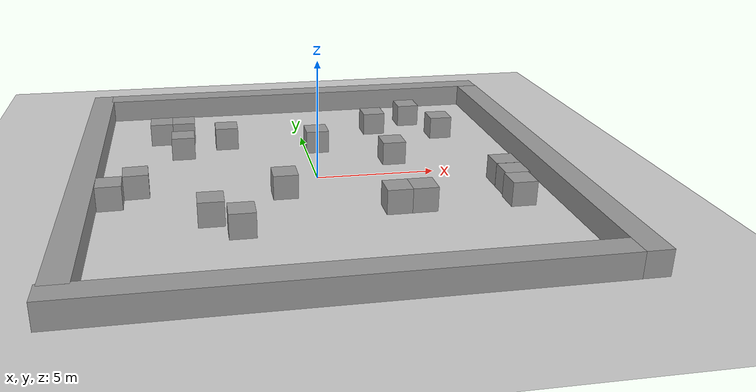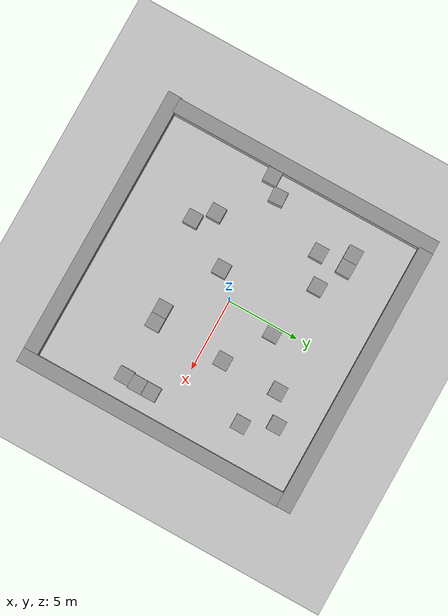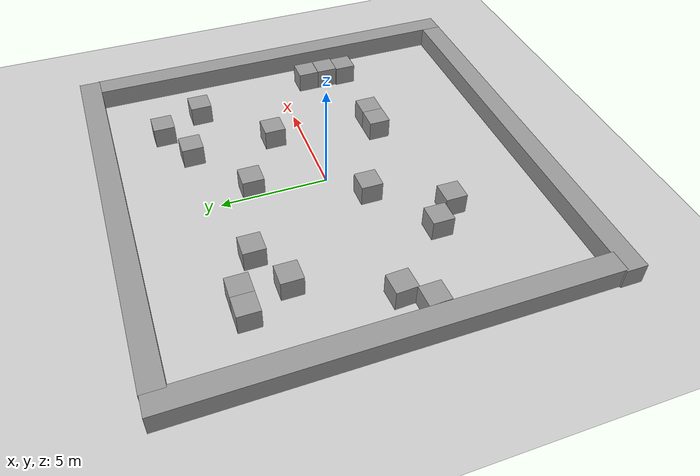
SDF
<sdf version="1.7">
 <world name="default">
  <light name="sun" type="directional">
   <pose>0 0 10 0 -0 0</pose>
   <diffuse>0.8 0.8 0.8 1</diffuse>
   <specular>0.2 0.2 0.2 1</specular>
   <attenuation>
    <range>1000</range>
    <constant>0.9</constant>
    <linear>0.01</linear>
    <quadratic>0.001</quadratic>
   </attenuation>
   <direction>-0.5 0.1 -0.9</direction>
   <spot><inner_angle>0</inner_angle><outer_angle>0</outer_angle><falloff>0</falloff></spot>
  </light>
  <model name="ground_plane">
   <static>1</static>
   <link name="link">
    <collision name="collision">
     <geometry><plane><normal>0 0 1</normal><size>100 100</size></plane></geometry>
     <surface>
      <contact><collide_bitmask>65535</collide_bitmask></contact>
      <friction><ode><mu>100</mu><mu2>50</mu2></ode></friction>
     </surface>
    </collision>
    <visual name="visual">
     <cast_shadows>0</cast_shadows>
     <geometry><plane><normal>0 0 1</normal><size>100 100</size></plane></geometry>
     <material>
      <script><uri>file://media/materials/scripts/gazebo.material</uri><name>Gazebo/Grey</name></script>
     </material>
    </visual>
   </link>
  </model>
  <gravity>0 0 -9.8</gravity>
  <magnetic_field>6e-06 2.3e-05 -4.2e-05</magnetic_field>
  <atmosphere type="adiabatic"/>
  <physics type="ode">
   <max_step_size>0.001</max_step_size>
   <real_time_factor>1</real_time_factor>
   <real_time_update_rate>1000</real_time_update_rate>
  </physics>
  <scene><ambient>0.4 0.4 0.4 1</ambient><background>0.7 0.7 0.7 1</background><shadows>1</shadows></scene>
  <spherical_coordinates>
   <surface_model>EARTH_WGS84</surface_model>
   <latitude_deg>0</latitude_deg>
   <longitude_deg>0</longitude_deg>
   <elevation>0</elevation>
   <heading_deg>0</heading_deg>
  </spherical_coordinates>
  <model name="arena">
   <link name="link">
    <inertial>
     <mass>18.9168</mass>
     <inertia><ixx>3.15279</ixx><ixy>0</ixy><ixz>0</ixz><iyy>565.677</iyy><iyz>0</iyz><izz>565.677</izz></inertia>
    </inertial>
    <pose>0.069183 -7.9899 7.8e-05 0 -0 0</pose>
    <visual name="visual">
     <geometry><box><size>18.9167 1 1</size></box></geometry>
     <material>
      <script><name>Gazebo/Grey</name><uri>file://media/materials/scripts/gazebo.material</uri></script>
      <shader type="pixel"/>
     </material>
    </visual>
    <collision name="collision">
     <geometry><box><size>18.9167 1 1</size></box></geometry>
     <surface>
      <friction>
       <ode><mu>1</mu><mu2>1</mu2><fdir1>0 0 0</fdir1><slip1>0</slip1><slip2>0</slip2></ode>
       <torsional>
        <coefficient>1</coefficient>
        <patch_radius>0</patch_radius>
        <surface_radius>0</surface_radius>
        <use_patch_radius>1</use_patch_radius>
        <ode><slip>0</slip></ode>
       </torsional>
      </friction>
      <bounce><restitution_coefficient>0</restitution_coefficient><threshold>1e+06</threshold></bounce>
      <contact>
       <collide_without_contact>0</collide_without_contact>
       <collide_without_contact_bitmask>1</collide_without_contact_bitmask>
       <collide_bitmask>1</collide_bitmask>
       <ode>
        <soft_cfm>0</soft_cfm>
        <soft_erp>0.2</soft_erp>
        <kp>1e+13</kp>
        <kd>1</kd>
        <max_vel>0.01</max_vel>
        <min_depth>0</min_depth>
       </ode>
       <bullet>
        <split_impulse>1</split_impulse>
        <split_impulse_penetration_threshold>-0.01</split_impulse_penetration_threshold>
        <soft_cfm>0</soft_cfm>
        <soft_erp>0.2</soft_erp>
        <kp>1e+13</kp>
        <kd>1</kd>
       </bullet>
      </contact>
     </surface>
    </collision>
   </link>
   <link name="link_0">
    <inertial>
     <mass>19.0551</mass>
     <inertia><ixx>578.161</ixx><ixy>0</ixy><ixz>0</ixz><iyy>3.17585</iyy><iyz>0</iyz><izz>578.161</izz></inertia>
    </inertial>
    <pose>10.0251 1.04525 -5e-06 -1e-05 0 0</pose>
    <visual name="visual">
     <geometry><box><size>1 19.0551 1</size></box></geometry>
     <material>
      <lighting>1</lighting>
      <script><uri>file://media/materials/scripts/gazebo.material</uri><name>Gazebo/Grey</name></script>
      <shader type="pixel"/>
     </material>
    </visual>
    <collision name="collision">
     <geometry><box><size>1 19.0551 1</size></box></geometry>
     <surface>
      <friction>
       <ode><mu>1</mu><mu2>1</mu2><fdir1>0 0 0</fdir1><slip1>0</slip1><slip2>0</slip2></ode>
       <torsional>
        <coefficient>1</coefficient>
        <patch_radius>0</patch_radius>
        <surface_radius>0</surface_radius>
        <use_patch_radius>1</use_patch_radius>
        <ode><slip>0</slip></ode>
       </torsional>
      </friction>
      <bounce><restitution_coefficient>0</restitution_coefficient><threshold>1e+06</threshold></bounce>
      <contact>
       <collide_without_contact>0</collide_without_contact>
       <collide_without_contact_bitmask>1</collide_without_contact_bitmask>
       <collide_bitmask>1</collide_bitmask>
       <ode>
        <soft_cfm>0</soft_cfm>
        <soft_erp>0.2</soft_erp>
        <kp>1e+13</kp>
        <kd>1</kd>
        <max_vel>0.01</max_vel>
        <min_depth>0</min_depth>
       </ode>
       <bullet>
        <split_impulse>1</split_impulse>
        <split_impulse_penetration_threshold>-0.01</split_impulse_penetration_threshold>
        <soft_cfm>0</soft_cfm>
        <soft_erp>0.2</soft_erp>
        <kp>1e+13</kp>
        <kd>1</kd>
       </bullet>
      </contact>
     </surface>
    </collision>
   </link>
   <link name="link_0_clone">
    <inertial>
     <mass>19.0551</mass>
     <inertia><ixx>578.161</ixx><ixy>0</ixy><ixz>0</ixz><iyy>3.17585</iyy><iyz>0</iyz><izz>578.161</izz></inertia>
    </inertial>
    <pose>-8.8177 1.91923 -2.4e-05 -2e-05 0 0</pose>
    <visual name="visual">
     <geometry><box><size>1 19.0551 1</size></box></geometry>
     <material>
      <lighting>1</lighting>
      <script><uri>file://media/materials/scripts/gazebo.material</uri><name>Gazebo/Grey</name></script>
      <shader type="pixel"/>
     </material>
    </visual>
    <collision name="collision">
     <geometry><box><size>1 19.0551 1</size></box></geometry>
     <surface>
      <friction>
       <ode><mu>1</mu><mu2>1</mu2><fdir1>0 0 0</fdir1><slip1>0</slip1><slip2>0</slip2></ode>
       <torsional>
        <coefficient>1</coefficient>
        <patch_radius>0</patch_radius>
        <surface_radius>0</surface_radius>
        <use_patch_radius>1</use_patch_radius>
        <ode><slip>0</slip></ode>
       </torsional>
      </friction>
      <bounce><restitution_coefficient>0</restitution_coefficient><threshold>1e+06</threshold></bounce>
      <contact>
       <collide_without_contact>0</collide_without_contact>
       <collide_without_contact_bitmask>1</collide_without_contact_bitmask>
       <collide_bitmask>1</collide_bitmask>
       <ode>
        <soft_cfm>0</soft_cfm>
        <soft_erp>0.2</soft_erp>
        <kp>1e+13</kp>
        <kd>1</kd>
        <max_vel>0.01</max_vel>
        <min_depth>0</min_depth>
       </ode>
       <bullet>
        <split_impulse>1</split_impulse>
        <split_impulse_penetration_threshold>-0.01</split_impulse_penetration_threshold>
        <soft_cfm>0</soft_cfm>
        <soft_erp>0.2</soft_erp>
        <kp>1e+13</kp>
        <kd>1</kd>
       </bullet>
      </contact>
     </surface>
    </collision>
   </link>
   <link name="link_clone">
    <inertial>
     <mass>18.9168</mass>
     <inertia><ixx>3.15279</ixx><ixy>0</ixy><ixz>0</ixz><iyy>565.677</iyy><iyz>0</iyz><izz>565.677</izz></inertia>
    </inertial>
    <pose>1.04069 10.9736 -2.9e-05 -1e-05 0 0</pose>
    <visual name="visual">
     <geometry><box><size>18.9167 1 1</size></box></geometry>
     <material>
      <script><name>Gazebo/Grey</name><uri>file://media/materials/scripts/gazebo.material</uri></script>
      <shader type="pixel"/>
     </material>
    </visual>
    <collision name="collision">
     <geometry><box><size>18.9167 1 1</size></box></geometry>
     <surface>
      <friction>
       <ode><mu>1</mu><mu2>1</mu2><fdir1>0 0 0</fdir1><slip1>0</slip1><slip2>0</slip2></ode>
       <torsional>
        <coefficient>1</coefficient>
        <patch_radius>0</patch_radius>
        <surface_radius>0</surface_radius>
        <use_patch_radius>1</use_patch_radius>
        <ode><slip>0</slip></ode>
       </torsional>
      </friction>
      <bounce><restitution_coefficient>0</restitution_coefficient><threshold>1e+06</threshold></bounce>
      <contact>
       <collide_without_contact>0</collide_without_contact>
       <collide_without_contact_bitmask>1</collide_without_contact_bitmask>
       <collide_bitmask>1</collide_bitmask>
       <ode>
        <soft_cfm>0</soft_cfm>
        <soft_erp>0.2</soft_erp>
        <kp>1e+13</kp>
        <kd>1</kd>
        <max_vel>0.01</max_vel>
        <min_depth>0</min_depth>
       </ode>
       <bullet>
        <split_impulse>1</split_impulse>
        <split_impulse_penetration_threshold>-0.01</split_impulse_penetration_threshold>
        <soft_cfm>0</soft_cfm>
        <soft_erp>0.2</soft_erp>
        <kp>1e+13</kp>
        <kd>1</kd>
       </bullet>
      </contact>
     </surface>
    </collision>
   </link>
   <static>0</static>
   <pose>-0.529199 -1.512 0.499922 0 -0 0</pose>
  </model>
  <model name="unit_box">
   <pose>5.481 6.50159 0.499995 0 1e-05 0</pose>
   <link name="link">
    <inertial>
     <mass>1</mass>
     <inertia>
      <ixx>0.166667</ixx>
      <ixy>0</ixy>
      <ixz>0</ixz>
      <iyy>0.166667</iyy>
      <iyz>0</iyz>
      <izz>0.166667</izz>
     </inertia>
    </inertial>
    <collision name="collision"><geometry><box><size>1 1 1</size></box></geometry></collision>
    <visual name="visual">
     <geometry><box><size>1 1 1</size></box></geometry>
     <material>
      <script><name>Gazebo/Grey</name><uri>file://media/materials/scripts/gazebo.material</uri></script>
     </material>
    </visual>
   </link>
  </model>
  <model name="unit_box_clone">
   <pose>3.5532 5.51879 0.499995 -1e-05 -0 -0</pose>
   <link name="link">
    <inertial>
     <mass>1</mass>
     <inertia>
      <ixx>0.166667</ixx>
      <ixy>0</ixy>
      <ixz>0</ixz>
      <iyy>0.166667</iyy>
      <iyz>0</iyz>
      <izz>0.166667</izz>
     </inertia>
    </inertial>
    <collision name="collision"><geometry><box><size>1 1 1</size></box></geometry></collision>
    <visual name="visual">
     <geometry><box><size>1 1 1</size></box></geometry>
     <material>
      <script><name>Gazebo/Grey</name><uri>file://media/materials/scripts/gazebo.material</uri></script>
     </material>
    </visual>
   </link>
  </model>
  <model name="unit_box_clone_0">
   <pose>6.53939 4.46039 0.499995 0 1e-05 0</pose>
   <link name="link">
    <inertial>
     <mass>1</mass>
     <inertia>
      <ixx>0.166667</ixx>
      <ixy>0</ixy>
      <ixz>0</ixz>
      <iyy>0.166667</iyy>
      <iyz>0</iyz>
      <izz>0.166667</izz>
     </inertia>
    </inertial>
    <collision name="collision"><geometry><box><size>1 1 1</size></box></geometry></collision>
    <visual name="visual">
     <geometry><box><size>1 1 1</size></box></geometry>
     <material>
      <script><name>Gazebo/Grey</name><uri>file://media/materials/scripts/gazebo.material</uri></script>
     </material>
    </visual>
   </link>
  </model>
  <model name="unit_box_clone_1">
   <pose>0.4914 3.4398 0.499995 -1e-05 -0 -0</pose>
   <link name="link">
    <inertial>
     <mass>1</mass>
     <inertia>
      <ixx>0.166667</ixx>
      <ixy>0</ixy>
      <ixz>0</ixz>
      <iyy>0.166667</iyy>
      <iyz>0</iyz>
      <izz>0.166667</izz>
     </inertia>
    </inertial>
    <collision name="collision"><geometry><box><size>1 1 1</size></box></geometry></collision>
    <visual name="visual">
     <geometry><box><size>1 1 1</size></box></geometry>
     <material>
      <script><name>Gazebo/Grey</name><uri>file://media/materials/scripts/gazebo.material</uri></script>
     </material>
    </visual>
   </link>
  </model>
  <model name="unit_box_clone_2">
   <pose>3.55321 1.512 0.499995 0 1e-05 0</pose>
   <link name="link">
    <inertial>
     <mass>1</mass>
     <inertia>
      <ixx>0.166667</ixx>
      <ixy>0</ixy>
      <ixz>0</ixz>
      <iyy>0.166667</iyy>
      <iyz>0</iyz>
      <izz>0.166667</izz>
     </inertia>
    </inertial>
    <collision name="collision"><geometry><box><size>1 1 1</size></box></geometry></collision>
    <visual name="visual">
     <geometry><box><size>1 1 1</size></box></geometry>
     <material>
      <script><name>Gazebo/Grey</name><uri>file://media/materials/scripts/gazebo.material</uri></script>
     </material>
    </visual>
   </link>
  </model>
  <model name="unit_box_clone_3">
   <pose>2.524 -3.47761 0.499995 1e-05 0 1e-06</pose>
   <link name="link">
    <inertial>
     <mass>1</mass>
     <inertia>
      <ixx>0.166667</ixx>
      <ixy>0</ixy>
      <ixz>0</ixz>
      <iyy>0.166667</iyy>
      <iyz>0</iyz>
      <izz>0.166667</izz>
     </inertia>
    </inertial>
    <collision name="collision"><geometry><box><size>1 1 1</size></box></geometry></collision>
    <visual name="visual">
     <geometry><box><size>1 1 1</size></box></geometry>
     <material>
      <script><name>Gazebo/Grey</name><uri>file://media/materials/scripts/gazebo.material</uri></script>
     </material>
    </visual>
   </link>
  </model>
  <model name="unit_box_clone_4">
   <pose>3.524 -3.47761 0.499995 1e-05 -0 2e-06</pose>
   <link name="link">
    <inertial>
     <mass>1</mass>
     <inertia>
      <ixx>0.166667</ixx>
      <ixy>0</ixy>
      <ixz>0</ixz>
      <iyy>0.166667</iyy>
      <iyz>0</iyz>
      <izz>0.166667</izz>
     </inertia>
    </inertial>
    <collision name="collision"><geometry><box><size>1 1 1</size></box></geometry></collision>
    <visual name="visual">
     <geometry><box><size>1 1 1</size></box></geometry>
     <material>
      <script><name>Gazebo/Grey</name><uri>file://media/materials/scripts/gazebo.material</uri></script>
     </material>
    </visual>
   </link>
  </model>
  <model name="unit_box_clone_5">
   <pose>-1.5498 -1.4364 0.499995 -1e-05 -0 -0</pose>
   <link name="link">
    <inertial>
     <mass>1</mass>
     <inertia>
      <ixx>0.166667</ixx>
      <ixy>0</ixy>
      <ixz>0</ixz>
      <iyy>0.166667</iyy>
      <iyz>0</iyz>
      <izz>0.166667</izz>
     </inertia>
    </inertial>
    <collision name="collision"><geometry><box><size>1 1 1</size></box></geometry></collision>
    <visual name="visual">
     <geometry><box><size>1 1 1</size></box></geometry>
     <material>
      <script><name>Gazebo/Grey</name><uri>file://media/materials/scripts/gazebo.material</uri></script>
     </material>
    </visual>
   </link>
  </model>
  <model name="unit_box_clone_6">
   <pose>-4.53599 -3.47759 0.499995 0 1e-05 0</pose>
   <link name="link">
    <inertial>
     <mass>1</mass>
     <inertia>
      <ixx>0.166667</ixx>
      <ixy>0</ixy>
      <ixz>0</ixz>
      <iyy>0.166667</iyy>
      <iyz>0</iyz>
      <izz>0.166667</izz>
     </inertia>
    </inertial>
    <collision name="collision"><geometry><box><size>1 1 1</size></box></geometry></collision>
    <visual name="visual">
     <geometry><box><size>1 1 1</size></box></geometry>
     <material>
      <script><name>Gazebo/Grey</name><uri>file://media/materials/scripts/gazebo.material</uri></script>
     </material>
    </visual>
   </link>
  </model>
  <model name="unit_box_clone_7">
   <pose>-3.4776 -4.61158 0.499995 -1e-05 -0 -0</pose>
   <link name="link">
    <inertial>
     <mass>1</mass>
     <inertia>
      <ixx>0.166667</ixx>
      <ixy>0</ixy>
      <ixz>0</ixz>
      <iyy>0.166667</iyy>
      <iyz>0</iyz>
      <izz>0.166667</izz>
     </inertia>
    </inertial>
    <collision name="collision"><geometry><box><size>1 1 1</size></box></geometry></collision>
    <visual name="visual">
     <geometry><box><size>1 1 1</size></box></geometry>
     <material>
      <script><name>Gazebo/Grey</name><uri>file://media/materials/scripts/gazebo.material</uri></script>
     </material>
    </visual>
   </link>
  </model>
  <model name="unit_box_clone_8">
   <pose>-3.51539 4.49819 0.499995 0 1e-05 0</pose>
   <link name="link">
    <inertial>
     <mass>1</mass>
     <inertia>
      <ixx>0.166667</ixx>
      <ixy>0</ixy>
      <ixz>0</ixz>
      <iyy>0.166667</iyy>
      <iyz>0</iyz>
      <izz>0.166667</izz>
     </inertia>
    </inertial>
    <collision name="collision"><geometry><box><size>1 1 1</size></box></geometry></collision>
    <visual name="visual">
     <geometry><box><size>1 1 1</size></box></geometry>
     <material>
      <script><name>Gazebo/Grey</name><uri>file://media/materials/scripts/gazebo.material</uri></script>
     </material>
    </visual>
   </link>
  </model>
  <model name="unit_box_clone_9">
   <pose>-5.43461 5.51879 0.5 -0 -0 -2e-06</pose>
   <link name="link">
    <inertial>
     <mass>1</mass>
     <inertia>
      <ixx>0.166667</ixx>
      <ixy>0</ixy>
      <ixz>0</ixz>
      <iyy>0.166667</iyy>
      <iyz>0</iyz>
      <izz>0.166667</izz>
     </inertia>
    </inertial>
    <collision name="collision"><geometry><box><size>1 1 1</size></box></geometry></collision>
    <visual name="visual">
     <geometry><box><size>1 1 1</size></box></geometry>
     <material>
      <script><name>Gazebo/Grey</name><uri>file://media/materials/scripts/gazebo.material</uri></script>
     </material>
    </visual>
   </link>
  </model>
  <model name="unit_box_clone_10">
   <pose>-5.48099 3.5154 0.499995 0 1e-05 0</pose>
   <link name="link">
    <inertial>
     <mass>1</mass>
     <inertia>
      <ixx>0.166667</ixx>
      <ixy>0</ixy>
      <ixz>0</ixz>
      <iyy>0.166667</iyy>
      <iyz>0</iyz>
      <izz>0.166667</izz>
     </inertia>
    </inertial>
    <collision name="collision"><geometry><box><size>1 1 1</size></box></geometry></collision>
    <visual name="visual">
     <geometry><box><size>1 1 1</size></box></geometry>
     <material>
      <script><name>Gazebo/Grey</name><uri>file://media/materials/scripts/gazebo.material</uri></script>
     </material>
    </visual>
   </link>
  </model>
  <model name="unit_box_clone_11">
   <pose>-6.43461 5.51879 0.5 0 -0 2e-06</pose>
   <link name="link">
    <inertial>
     <mass>1</mass>
     <inertia>
      <ixx>0.166667</ixx>
      <ixy>0</ixy>
      <ixz>0</ixz>
      <iyy>0.166667</iyy>
      <iyz>0</iyz>
      <izz>0.166667</izz>
     </inertia>
    </inertial>
    <collision name="collision"><geometry><box><size>1 1 1</size></box></geometry></collision>
    <visual name="visual">
     <geometry><box><size>1 1 1</size></box></geometry>
     <material>
      <script><name>Gazebo/Grey</name><uri>file://media/materials/scripts/gazebo.material</uri></script>
     </material>
    </visual>
   </link>
  </model>
  <model name="unit_box_clone_12">
   <pose>7.52219 -1.512 0.499995 0 1e-05 0</pose>
   <link name="link">
    <inertial>
     <mass>1</mass>
     <inertia>
      <ixx>0.166667</ixx>
      <ixy>0</ixy>
      <ixz>0</ixz>
      <iyy>0.166667</iyy>
      <iyz>0</iyz>
      <izz>0.166667</izz>
     </inertia>
    </inertial>
    <collision name="collision"><geometry><box><size>1 1 1</size></box></geometry></collision>
    <visual name="visual">
     <geometry><box><size>1 1 1</size></box></geometry>
     <material>
      <script><name>Gazebo/Grey</name><uri>file://media/materials/scripts/gazebo.material</uri></script>
     </material>
    </visual>
   </link>
  </model>
  <model name="unit_box_clone_13">
   <pose>7.52256 -2.52402 0.499995 -0 -1e-05 -0.000759</pose>
   <link name="link">
    <inertial>
     <mass>1</mass>
     <inertia>
      <ixx>0.166667</ixx>
      <ixy>0</ixy>
      <ixz>0</ixz>
      <iyy>0.166667</iyy>
      <iyz>0</iyz>
      <izz>0.166667</izz>
     </inertia>
    </inertial>
    <collision name="collision"><geometry><box><size>1 1 1</size></box></geometry></collision>
    <visual name="visual">
     <geometry><box><size>1 1 1</size></box></geometry>
     <material>
      <script><name>Gazebo/Grey</name><uri>file://media/materials/scripts/gazebo.material</uri></script>
     </material>
    </visual>
   </link>
  </model>
  <model name="unit_box_clone_14">
   <pose>7.44621 -3.52397 0.499995 -0 -1e-05 -0.000759</pose>
   <link name="link">
    <inertial>
     <mass>1</mass>
     <inertia>
      <ixx>0.166667</ixx>
      <ixy>0</ixy>
      <ixz>0</ixz>
      <iyy>0.166667</iyy>
      <iyz>0</iyz>
      <izz>0.166667</izz>
     </inertia>
    </inertial>
    <collision name="collision"><geometry><box><size>1 1 1</size></box></geometry></collision>
    <visual name="visual">
     <geometry><box><size>1 1 1</size></box></geometry>
     <material>
      <script><name>Gazebo/Grey</name><uri>file://media/materials/scripts/gazebo.material</uri></script>
     </material>
    </visual>
   </link>
  </model>
  <model name="unit_box_clone_15">
   <pose>-7.37005 -0.510174 0.5 0 -0 0.051171</pose>
   <link name="link">
    <inertial>
     <mass>1</mass>
     <inertia>
      <ixx>0.166667</ixx>
      <ixy>0</ixy>
      <ixz>0</ixz>
      <iyy>0.166667</iyy>
      <iyz>0</iyz>
      <izz>0.166667</izz>
     </inertia>
    </inertial>
    <collision name="collision"><geometry><box><size>1 1 1</size></box></geometry></collision>
    <visual name="visual">
     <geometry><box><size>1 1 1</size></box></geometry>
     <material>
      <script><name>Gazebo/Grey</name><uri>file://media/materials/scripts/gazebo.material</uri></script>
     </material>
    </visual>
   </link>
  </model>
  <model name="unit_box_clone_16">
   <pose>-8.33527 -1.46386 0.5 0 -0 0.025523</pose>
   <link name="link">
    <inertial>
     <mass>1</mass>
     <inertia>
      <ixx>0.166667</ixx>
      <ixy>0</ixy>
      <ixz>0</ixz>
      <iyy>0.166667</iyy>
      <iyz>0</iyz>
      <izz>0.166667</izz>
     </inertia>
    </inertial>
    <collision name="collision"><geometry><box><size>1 1 1</size></box></geometry></collision>
    <visual name="visual">
     <geometry><box><size>1 1 1</size></box></geometry>
     <material>
      <script><name>Gazebo/Grey</name><uri>file://media/materials/scripts/gazebo.material</uri></script>
     </material>
    </visual>
   </link>
  </model>
 </world>
</sdf>
